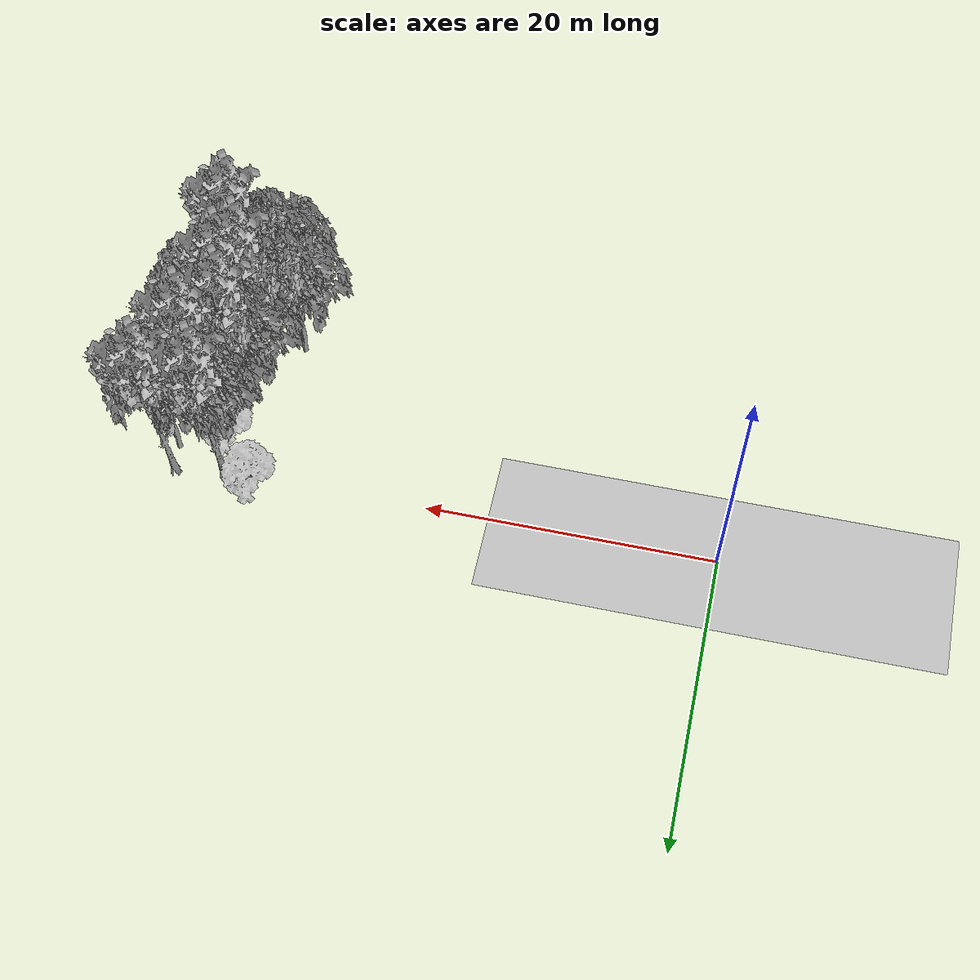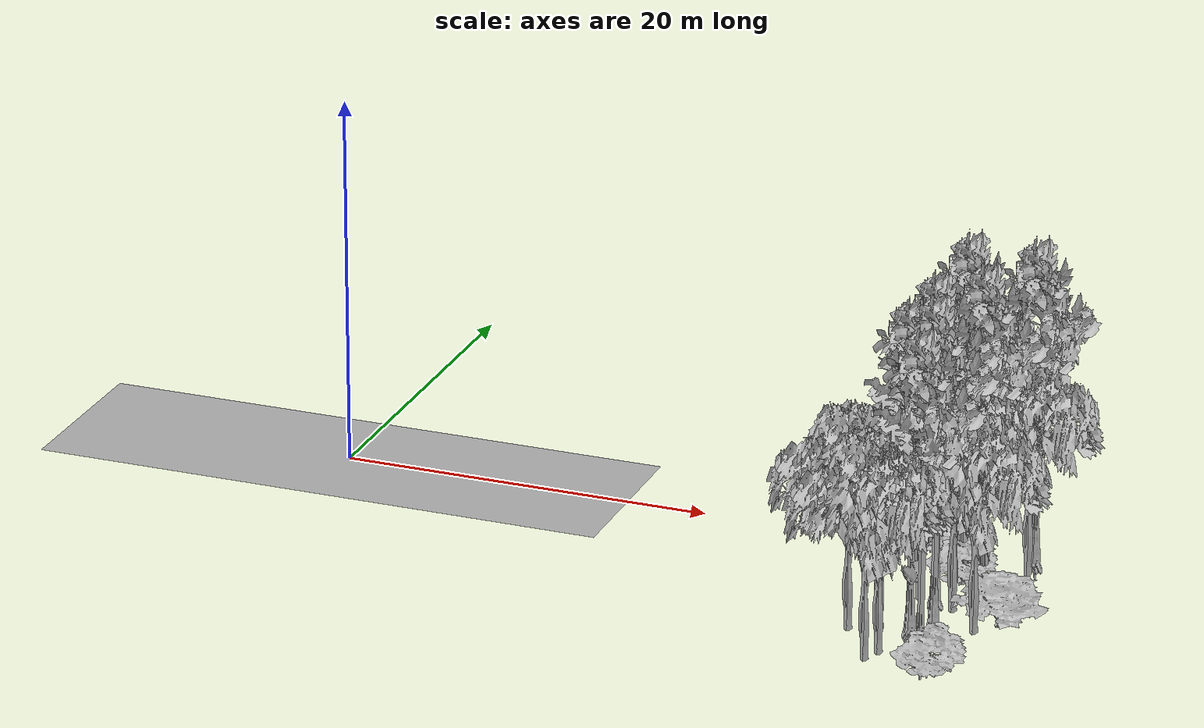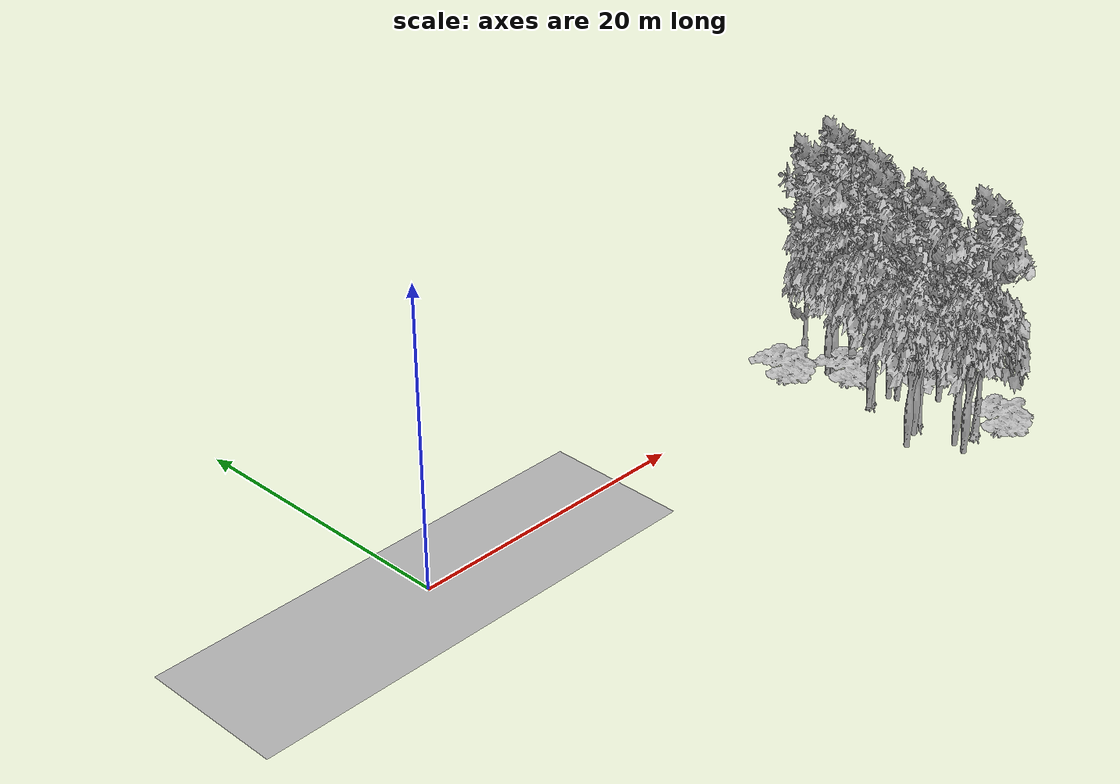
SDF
<sdf version="1.7">
 <world name="default">
  <model name="ground_plane">
   <static>1</static>
   <link name="link">
    <collision name="collision">
     <pose>-50 0 0 0 -0 0</pose>
     <geometry><plane><normal>0 0 1</normal><size>100 100</size></plane></geometry>
     <surface><contact><ode><min_depth>0.01</min_depth><max_vel>0</max_vel></ode></contact></surface>
    </collision>
    <visual name="grass">
     <cast_shadows>0</cast_shadows>
     <geometry>
      <mesh>
       <scale>0.5814285714285714 0.18142857142857144 0.1</scale>
       <uri>file://grass_plane/meshes/grass_plane.dae</uri>
      </mesh>
     </geometry>
    </visual>
   </link>
  </model>
  <model name="Tree 1">
   <static>1</static>
   <pose>32.246113342987115 0.1706914033773561 0 1.57079 -0 0</pose>
   <link name="link">
    <collision name="collision">
     <geometry><mesh><scale>4 2.5 4</scale><uri>model://tree_1/meshes/tree_1.obj</uri></mesh></geometry>
    </collision>
    <visual name="visual">
     <geometry><mesh><scale>4 2.5 4</scale><uri>model://tree_1/meshes/tree_1.obj</uri></mesh></geometry>
    </visual>
   </link>
  </model>
  <model name="Tree 93">
   <static>1</static>
   <pose>31.353733249547787 -10.738600366743135 0 1.57079 -0 0</pose>
   <link name="link">
    <collision name="collision">
     <geometry><mesh><scale>3.5 5 3.5</scale><uri>model://tree_2/meshes/tree_2.obj</uri></mesh></geometry>
    </collision>
    <visual name="visual">
     <geometry><mesh><scale>3.5 5 3.5</scale><uri>model://tree_2/meshes/tree_2.obj</uri></mesh></geometry>
    </visual>
   </link>
  </model>
  <model name="Tree 96">
   <static>1</static>
   <pose>33.24908184564282 -13.80955200206717 0 1.57079 -0 0</pose>
   <link name="link">
    <collision name="collision">
     <geometry><mesh><scale>3.5 5 3.5</scale><uri>model://tree_2/meshes/tree_2.obj</uri></mesh></geometry>
    </collision>
    <visual name="visual">
     <geometry><mesh><scale>3.5 5 3.5</scale><uri>model://tree_2/meshes/tree_2.obj</uri></mesh></geometry>
    </visual>
   </link>
  </model>
  <model name="Tree 162">
   <static>1</static>
   <pose>38.25897266571381 -7.513959520567686 0 1.57079 -0 0</pose>
   <link name="link">
    <collision name="collision">
     <geometry><mesh><scale>3 2 3</scale><uri>model://tree_3/meshes/tree_3.obj</uri></mesh></geometry>
    </collision>
    <visual name="visual">
     <geometry><mesh><scale>3 2 3</scale><uri>model://tree_3/meshes/tree_3.obj</uri></mesh></geometry>
    </visual>
   </link>
  </model>
  <model name="Tree 192">
   <static>1</static>
   <pose>34.966703281235354 -3.3888274205193767 0 1.57079 -0 0</pose>
   <link name="link">
    <collision name="collision">
     <geometry><mesh><scale>3.5 5 3.5</scale><uri>model://tree_2/meshes/tree_2.obj</uri></mesh></geometry>
    </collision>
    <visual name="visual">
     <geometry><mesh><scale>3.5 5 3.5</scale><uri>model://tree_2/meshes/tree_2.obj</uri></mesh></geometry>
    </visual>
   </link>
  </model>
  <model name="Tree 243">
   <static>1</static>
   <pose>34.95785870139697 -1.403223643274318 0 1.57079 -0 0</pose>
   <link name="link">
    <collision name="collision">
     <geometry><mesh><scale>3.5 5 3.5</scale><uri>model://tree_2/meshes/tree_2.obj</uri></mesh></geometry>
    </collision>
    <visual name="visual">
     <geometry><mesh><scale>3.5 5 3.5</scale><uri>model://tree_2/meshes/tree_2.obj</uri></mesh></geometry>
    </visual>
   </link>
  </model>
  <model name="Tree 251">
   <static>1</static>
   <pose>34.26960536425119 0.054757729823503354 0 1.57079 -0 0</pose>
   <link name="link">
    <collision name="collision">
     <geometry><mesh><scale>3.5 5 3.5</scale><uri>model://tree_9/meshes/tree_9.obj</uri></mesh></geometry>
    </collision>
    <visual name="visual">
     <geometry><mesh><scale>3.5 5 3.5</scale><uri>model://tree_9/meshes/tree_9.obj</uri></mesh></geometry>
    </visual>
   </link>
  </model>
  <model name="Tree 315">
   <static>1</static>
   <pose>34.82788435892532 -3.1272380954879235 0 1.57079 -0 0</pose>
   <link name="link">
    <collision name="collision">
     <geometry><mesh><scale>4 2.5 4</scale><uri>model://tree_1/meshes/tree_1.obj</uri></mesh></geometry>
    </collision>
    <visual name="visual">
     <geometry><mesh><scale>4 2.5 4</scale><uri>model://tree_1/meshes/tree_1.obj</uri></mesh></geometry>
    </visual>
   </link>
  </model>
  <model name="Tree 327">
   <static>1</static>
   <pose>35.92351980202518 -12.903978423932625 0 1.57079 -0 0</pose>
   <link name="link">
    <collision name="collision">
     <geometry><mesh><scale>3.5 5 3.5</scale><uri>model://tree_9/meshes/tree_9.obj</uri></mesh></geometry>
    </collision>
    <visual name="visual">
     <geometry><mesh><scale>3.5 5 3.5</scale><uri>model://tree_9/meshes/tree_9.obj</uri></mesh></geometry>
    </visual>
   </link>
  </model>
  <model name="Tree 328">
   <static>1</static>
   <pose>37.312235438159576 -8.907435786647014 0 1.57079 -0 0</pose>
   <link name="link">
    <collision name="collision">
     <geometry><mesh><scale>3.5 5 3.5</scale><uri>model://tree_2/meshes/tree_2.obj</uri></mesh></geometry>
    </collision>
    <visual name="visual">
     <geometry><mesh><scale>3.5 5 3.5</scale><uri>model://tree_2/meshes/tree_2.obj</uri></mesh></geometry>
    </visual>
   </link>
  </model>
  <model name="Tree 335">
   <static>1</static>
   <pose>37.721022707780705 -1.277605421656494 0 1.57079 -0 0</pose>
   <link name="link">
    <collision name="collision">
     <geometry><mesh><scale>3.5 5 3.5</scale><uri>model://tree_2/meshes/tree_2.obj</uri></mesh></geometry>
    </collision>
    <visual name="visual">
     <geometry><mesh><scale>3.5 5 3.5</scale><uri>model://tree_2/meshes/tree_2.obj</uri></mesh></geometry>
    </visual>
   </link>
  </model>
  <model name="Tree 337">
   <static>1</static>
   <pose>36.71142441483701 -14.08937518408736 0 1.57079 -0 0</pose>
   <link name="link">
    <collision name="collision">
     <geometry><mesh><scale>4 2.5 4</scale><uri>model://tree_1/meshes/tree_1.obj</uri></mesh></geometry>
    </collision>
    <visual name="visual">
     <geometry><mesh><scale>4 2.5 4</scale><uri>model://tree_1/meshes/tree_1.obj</uri></mesh></geometry>
    </visual>
   </link>
  </model>
  <model name="Tree 359">
   <static>1</static>
   <pose>35.366891771186005 -6.25401053816295 0 1.57079 -0 0</pose>
   <link name="link">
    <collision name="collision">
     <geometry><mesh><scale>3.5 5 3.5</scale><uri>model://tree_2/meshes/tree_2.obj</uri></mesh></geometry>
    </collision>
    <visual name="visual">
     <geometry><mesh><scale>3.5 5 3.5</scale><uri>model://tree_2/meshes/tree_2.obj</uri></mesh></geometry>
    </visual>
   </link>
  </model>
  <model name="Tree 379">
   <static>1</static>
   <pose>34.29217395224268 -9.525476890738076 0 1.57079 -0 0</pose>
   <link name="link">
    <collision name="collision">
     <geometry><mesh><scale>3.5 5 3.5</scale><uri>model://tree_9/meshes/tree_9.obj</uri></mesh></geometry>
    </collision>
    <visual name="visual">
     <geometry><mesh><scale>3.5 5 3.5</scale><uri>model://tree_9/meshes/tree_9.obj</uri></mesh></geometry>
    </visual>
   </link>
  </model>
  <model name="Tree 381">
   <static>1</static>
   <pose>33.65089273906274 -12.831321573686996 0 1.57079 -0 0</pose>
   <link name="link">
    <collision name="collision">
     <geometry><mesh><scale>3.5 5 3.5</scale><uri>model://tree_2/meshes/tree_2.obj</uri></mesh></geometry>
    </collision>
    <visual name="visual">
     <geometry><mesh><scale>3.5 5 3.5</scale><uri>model://tree_2/meshes/tree_2.obj</uri></mesh></geometry>
    </visual>
   </link>
  </model>
  <model name="Tree 391">
   <static>1</static>
   <pose>35.5330834665408 -6.830125033804235 0 1.57079 -0 0</pose>
   <link name="link">
    <collision name="collision">
     <geometry><mesh><scale>3.5 5 3.5</scale><uri>model://tree_2/meshes/tree_2.obj</uri></mesh></geometry>
    </collision>
    <visual name="visual">
     <geometry><mesh><scale>3.5 5 3.5</scale><uri>model://tree_2/meshes/tree_2.obj</uri></mesh></geometry>
    </visual>
   </link>
  </model>
  <model name="Tree 405">
   <static>1</static>
   <pose>37.66223893765222 0.44518280435186064 0 1.57079 -0 0</pose>
   <link name="link">
    <collision name="collision">
     <geometry><mesh><scale>3.5 5 3.5</scale><uri>model://tree_9/meshes/tree_9.obj</uri></mesh></geometry>
    </collision>
    <visual name="visual">
     <geometry><mesh><scale>3.5 5 3.5</scale><uri>model://tree_9/meshes/tree_9.obj</uri></mesh></geometry>
    </visual>
   </link>
  </model>
  <model name="Tree 414">
   <static>1</static>
   <pose>35.1948496282544 -8.516569301450756 0 1.57079 -0 0</pose>
   <link name="link">
    <collision name="collision">
     <geometry><mesh><scale>3.5 5 3.5</scale><uri>model://tree_9/meshes/tree_9.obj</uri></mesh></geometry>
    </collision>
    <visual name="visual">
     <geometry><mesh><scale>3.5 5 3.5</scale><uri>model://tree_9/meshes/tree_9.obj</uri></mesh></geometry>
    </visual>
   </link>
  </model>
  <model name="Tree 449">
   <static>1</static>
   <pose>34.34613111214277 -5.664283151475258 0 1.57079 -0 0</pose>
   <link name="link">
    <collision name="collision">
     <geometry><mesh><scale>3.5 5 3.5</scale><uri>model://tree_9/meshes/tree_9.obj</uri></mesh></geometry>
    </collision>
    <visual name="visual">
     <geometry><mesh><scale>3.5 5 3.5</scale><uri>model://tree_9/meshes/tree_9.obj</uri></mesh></geometry>
    </visual>
   </link>
  </model>
  <model name="Tree 470">
   <static>1</static>
   <pose>36.225475675918716 -3.63127399531111 0 1.57079 -0 0</pose>
   <link name="link">
    <collision name="collision">
     <geometry><mesh><scale>3.5 5 3.5</scale><uri>model://tree_9/meshes/tree_9.obj</uri></mesh></geometry>
    </collision>
    <visual name="visual">
     <geometry><mesh><scale>3.5 5 3.5</scale><uri>model://tree_9/meshes/tree_9.obj</uri></mesh></geometry>
    </visual>
   </link>
  </model>
  <model name="Tree 494">
   <static>1</static>
   <pose>32.81697520351999 -10.200054919102367 0 1.57079 -0 0</pose>
   <link name="link">
    <collision name="collision">
     <geometry><mesh><scale>3.5 5 3.5</scale><uri>model://tree_2/meshes/tree_2.obj</uri></mesh></geometry>
    </collision>
    <visual name="visual">
     <geometry><mesh><scale>3.5 5 3.5</scale><uri>model://tree_2/meshes/tree_2.obj</uri></mesh></geometry>
    </visual>
   </link>
  </model>
  <model name="Tree 521">
   <static>1</static>
   <pose>35.192278448164274 -1.6791842079896266 0 1.57079 -0 0</pose>
   <link name="link">
    <collision name="collision">
     <geometry><mesh><scale>3.5 5 3.5</scale><uri>model://tree_2/meshes/tree_2.obj</uri></mesh></geometry>
    </collision>
    <visual name="visual">
     <geometry><mesh><scale>3.5 5 3.5</scale><uri>model://tree_2/meshes/tree_2.obj</uri></mesh></geometry>
    </visual>
   </link>
  </model>
  <model name="Tree 523">
   <static>1</static>
   <pose>33.55103846754663 -6.02927024811329 0 1.57079 -0 0</pose>
   <link name="link">
    <collision name="collision">
     <geometry><mesh><scale>3.5 5 3.5</scale><uri>model://tree_2/meshes/tree_2.obj</uri></mesh></geometry>
    </collision>
    <visual name="visual">
     <geometry><mesh><scale>3.5 5 3.5</scale><uri>model://tree_2/meshes/tree_2.obj</uri></mesh></geometry>
    </visual>
   </link>
  </model>
 </world>
</sdf>
